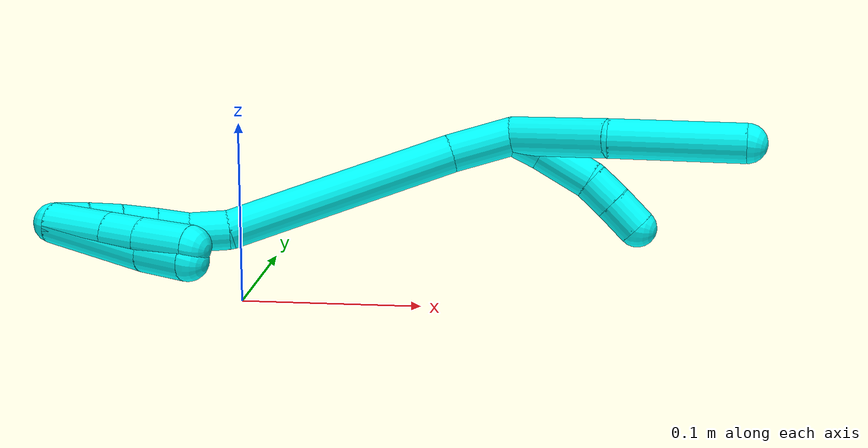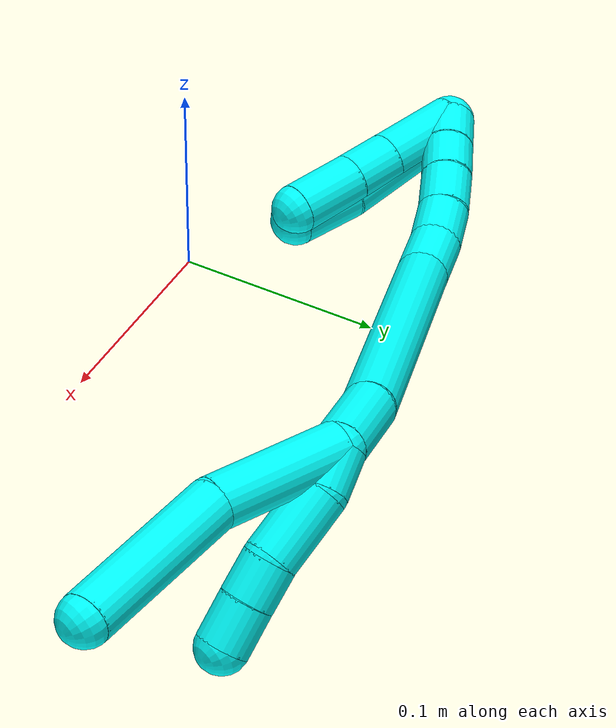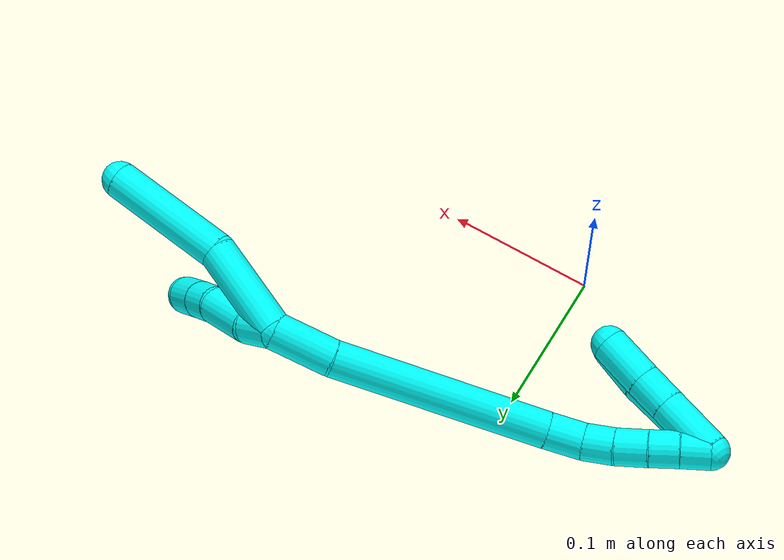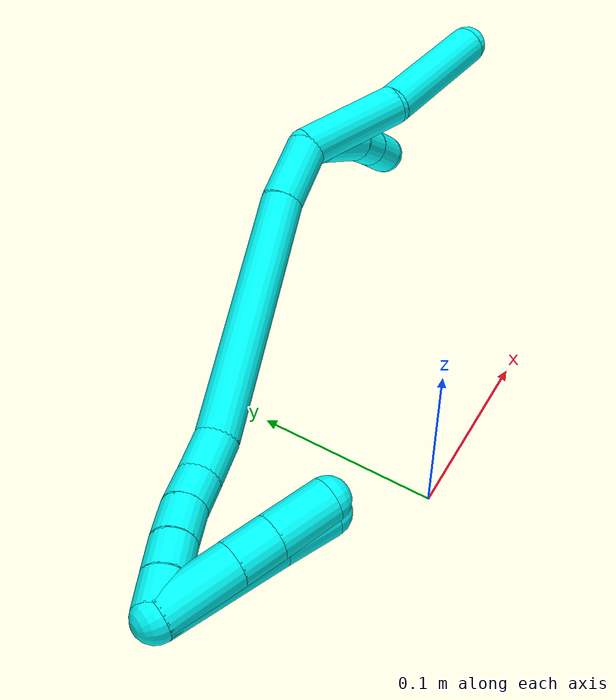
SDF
<sdf version="1.7">
 <world name="default">
  <model name="3">
   <static>0</static>
   <link name="3">
    <collision name="collision-cylinder-e_1_2_8">
     <pose>0.006742 -0.002748 -0.032233 3.05655 0.205469 2.35877</pose>
     <geometry><cylinder><radius>0.0125</radius><length>0.066091</length></cylinder></geometry>
     <surface>
      <friction><ode><mu>1.16</mu><mu2>1.16</mu2><slip1>0</slip1><slip2>0</slip2></ode></friction>
      <contact><ode><kp>1e+06</kp><kd>1</kd><max_vel>0</max_vel><min_depth>0.001</min_depth></ode></contact>
     </surface>
    </collision>
    <visual name="visual-cylinder-e_1_2_8">
     <pose>0.006742 -0.002748 -0.032233 3.05655 0.205469 2.35877</pose>
     <geometry><cylinder><radius>0.0125</radius><length>0.066091</length></cylinder></geometry>
     <material><ambient>0.003922 1 0.996078 1</ambient></material>
    </visual>
    <collision name="collision-cylinder-e_2_8_6">
     <pose>0.020006 0.003236 -0.104981 -2.92931 0.156071 -1.26628</pose>
     <geometry><cylinder><radius>0.0125</radius><length>0.083909</length></cylinder></geometry>
     <surface>
      <friction><ode><mu>1.16</mu><mu2>1.16</mu2><slip1>0</slip1><slip2>0</slip2></ode></friction>
      <contact><ode><kp>1e+06</kp><kd>1</kd><max_vel>0</max_vel><min_depth>0.001</min_depth></ode></contact>
     </surface>
    </collision>
    <visual name="visual-cylinder-e_2_8_6">
     <pose>0.020006 0.003236 -0.104981 -2.92931 0.156071 -1.26628</pose>
     <geometry><cylinder><radius>0.0125</radius><length>0.083909</length></cylinder></geometry>
     <material><ambient>0.003922 1 0.996078 1</ambient></material>
    </visual>
    <collision name="collision-cylinder-e_1_2_9">
     <pose>-0.003483 0.004195 -0.00927 -2.71667 -0.329847 1.31429</pose>
     <geometry><cylinder><radius>0.0125</radius><length>0.021509</length></cylinder></geometry>
     <surface>
      <friction><ode><mu>1.16</mu><mu2>1.16</mu2><slip1>0</slip1><slip2>0</slip2></ode></friction>
      <contact><ode><kp>1e+06</kp><kd>1</kd><max_vel>0</max_vel><min_depth>0.001</min_depth></ode></contact>
     </surface>
    </collision>
    <visual name="visual-cylinder-e_1_2_9">
     <pose>-0.003483 0.004195 -0.00927 -2.71667 -0.329847 1.31429</pose>
     <geometry><cylinder><radius>0.0125</radius><length>0.021509</length></cylinder></geometry>
     <material><ambient>0.003922 1 0.996078 1</ambient></material>
    </visual>
    <collision name="collision-cylinder-e_2_9_10">
     <pose>-0.013017 0.010567 -0.035402 -3.01313 -0.341895 2.42828</pose>
     <geometry><cylinder><radius>0.0125</radius><length>0.036094</length></cylinder></geometry>
     <surface>
      <friction><ode><mu>1.16</mu><mu2>1.16</mu2><slip1>0</slip1><slip2>0</slip2></ode></friction>
      <contact><ode><kp>1e+06</kp><kd>1</kd><max_vel>0</max_vel><min_depth>0.001</min_depth></ode></contact>
     </surface>
    </collision>
    <visual name="visual-cylinder-e_2_9_10">
     <pose>-0.013017 0.010567 -0.035402 -3.01313 -0.341895 2.42828</pose>
     <geometry><cylinder><radius>0.0125</radius><length>0.036094</length></cylinder></geometry>
     <material><ambient>0.003922 1 0.996078 1</ambient></material>
    </visual>
    <collision name="collision-cylinder-e_3_10_11">
     <pose>-0.024588 0.01406 -0.060606 -2.98531 -0.57897 2.62745</pose>
     <geometry><cylinder><radius>0.0125</radius><length>0.020177</length></cylinder></geometry>
     <surface>
      <friction><ode><mu>1.16</mu><mu2>1.16</mu2><slip1>0</slip1><slip2>0</slip2></ode></friction>
      <contact><ode><kp>1e+06</kp><kd>1</kd><max_vel>0</max_vel><min_depth>0.001</min_depth></ode></contact>
     </surface>
    </collision>
    <visual name="visual-cylinder-e_3_10_11">
     <pose>-0.024588 0.01406 -0.060606 -2.98531 -0.57897 2.62745</pose>
     <geometry><cylinder><radius>0.0125</radius><length>0.020177</length></cylinder></geometry>
     <material><ambient>0.003922 1 0.996078 1</ambient></material>
    </visual>
    <collision name="collision-cylinder-e_4_11_5">
     <pose>-0.036594 0.016754 -0.077861 -2.98798 -0.62343 2.6727</pose>
     <geometry><cylinder><radius>0.0125</radius><length>0.02222</length></cylinder></geometry>
     <surface>
      <friction><ode><mu>1.16</mu><mu2>1.16</mu2><slip1>0</slip1><slip2>0</slip2></ode></friction>
      <contact><ode><kp>1e+06</kp><kd>1</kd><max_vel>0</max_vel><min_depth>0.001</min_depth></ode></contact>
     </surface>
    </collision>
    <visual name="visual-cylinder-e_4_11_5">
     <pose>-0.036594 0.016754 -0.077861 -2.98798 -0.62343 2.6727</pose>
     <geometry><cylinder><radius>0.0125</radius><length>0.02222</length></cylinder></geometry>
     <material><ambient>0.003922 1 0.996078 1</ambient></material>
    </visual>
    <collision name="collision-cylinder-e_1_2_12">
     <pose>-0.008437 -0.009582 0.016531 0.525285 -0.415804 -0.113308</pose>
     <geometry><cylinder><radius>0.0125</radius><length>0.041775</length></cylinder></geometry>
     <surface>
      <friction><ode><mu>1.16</mu><mu2>1.16</mu2><slip1>0</slip1><slip2>0</slip2></ode></friction>
      <contact><ode><kp>1e+06</kp><kd>1</kd><max_vel>0</max_vel><min_depth>0.001</min_depth></ode></contact>
     </surface>
    </collision>
    <visual name="visual-cylinder-e_1_2_12">
     <pose>-0.008437 -0.009582 0.016531 0.525285 -0.415804 -0.113308</pose>
     <geometry><cylinder><radius>0.0125</radius><length>0.041775</length></cylinder></geometry>
     <material><ambient>0.003922 1 0.996078 1</ambient></material>
    </visual>
    <collision name="collision-cylinder-e_2_12_13">
     <pose>-0.048297 -0.061959 0.085663 0.682976 -0.433942 -0.156375</pose>
     <geometry><cylinder><radius>0.0125</radius><length>0.149475</length></cylinder></geometry>
     <surface>
      <friction><ode><mu>1.16</mu><mu2>1.16</mu2><slip1>0</slip1><slip2>0</slip2></ode></friction>
      <contact><ode><kp>1e+06</kp><kd>1</kd><max_vel>0</max_vel><min_depth>0.001</min_depth></ode></contact>
     </surface>
    </collision>
    <visual name="visual-cylinder-e_2_12_13">
     <pose>-0.048297 -0.061959 0.085663 0.682976 -0.433942 -0.156375</pose>
     <geometry><cylinder><radius>0.0125</radius><length>0.149475</length></cylinder></geometry>
     <material><ambient>0.003922 1 0.996078 1</ambient></material>
    </visual>
    <collision name="collision-cylinder-e_3_13_14">
     <pose>-0.082062 -0.111745 0.148829 0.584511 -0.182757 -0.055126</pose>
     <geometry><cylinder><radius>0.0125</radius><length>0.025767</length></cylinder></geometry>
     <surface>
      <friction><ode><mu>1.16</mu><mu2>1.16</mu2><slip1>0</slip1><slip2>0</slip2></ode></friction>
      <contact><ode><kp>1e+06</kp><kd>1</kd><max_vel>0</max_vel><min_depth>0.001</min_depth></ode></contact>
     </surface>
    </collision>
    <visual name="visual-cylinder-e_3_13_14">
     <pose>-0.082062 -0.111745 0.148829 0.584511 -0.182757 -0.055126</pose>
     <geometry><cylinder><radius>0.0125</radius><length>0.025767</length></cylinder></geometry>
     <material><ambient>0.003922 1 0.996078 1</ambient></material>
    </visual>
    <collision name="collision-cylinder-e_4_14_15">
     <pose>-0.083895 -0.124921 0.167843 0.631989 0.048511 0.015864</pose>
     <geometry><cylinder><radius>0.0125</radius><length>0.020965</length></cylinder></geometry>
     <surface>
      <friction><ode><mu>1.16</mu><mu2>1.16</mu2><slip1>0</slip1><slip2>0</slip2></ode></friction>
      <contact><ode><kp>1e+06</kp><kd>1</kd><max_vel>0</max_vel><min_depth>0.001</min_depth></ode></contact>
     </surface>
    </collision>
    <visual name="visual-cylinder-e_4_14_15">
     <pose>-0.083895 -0.124921 0.167843 0.631989 0.048511 0.015864</pose>
     <geometry><cylinder><radius>0.0125</radius><length>0.020965</length></cylinder></geometry>
     <material><ambient>0.003922 1 0.996078 1</ambient></material>
    </visual>
    <collision name="collision-cylinder-e_5_15_16">
     <pose>-0.082875 -0.138548 0.184311 0.747987 0.046784 0.018364</pose>
     <geometry><cylinder><radius>0.0125</radius><length>0.021906</length></cylinder></geometry>
     <surface>
      <friction><ode><mu>1.16</mu><mu2>1.16</mu2><slip1>0</slip1><slip2>0</slip2></ode></friction>
      <contact><ode><kp>1e+06</kp><kd>1</kd><max_vel>0</max_vel><min_depth>0.001</min_depth></ode></contact>
     </surface>
    </collision>
    <visual name="visual-cylinder-e_5_15_16">
     <pose>-0.082875 -0.138548 0.184311 0.747987 0.046784 0.018364</pose>
     <geometry><cylinder><radius>0.0125</radius><length>0.021906</length></cylinder></geometry>
     <material><ambient>0.003922 1 0.996078 1</ambient></material>
    </visual>
    <collision name="collision-cylinder-e_6_16_17">
     <pose>-0.082405 -0.153169 0.199336 0.797781 -0.004271 -0.0018</pose>
     <geometry><cylinder><radius>0.0125</radius><length>0.02006</length></cylinder></geometry>
     <surface>
      <friction><ode><mu>1.16</mu><mu2>1.16</mu2><slip1>0</slip1><slip2>0</slip2></ode></friction>
      <contact><ode><kp>1e+06</kp><kd>1</kd><max_vel>0</max_vel><min_depth>0.001</min_depth></ode></contact>
     </surface>
    </collision>
    <visual name="visual-cylinder-e_6_16_17">
     <pose>-0.082405 -0.153169 0.199336 0.797781 -0.004271 -0.0018</pose>
     <geometry><cylinder><radius>0.0125</radius><length>0.02006</length></cylinder></geometry>
     <material><ambient>0.003922 1 0.996078 1</ambient></material>
    </visual>
    <collision name="collision-cylinder-e_7_17_1">
     <pose>-0.08305 -0.167499 0.213341 0.795896 -0.060027 -0.02524</pose>
     <geometry><cylinder><radius>0.0125</radius><length>0.020053</length></cylinder></geometry>
     <surface>
      <friction><ode><mu>1.16</mu><mu2>1.16</mu2><slip1>0</slip1><slip2>0</slip2></ode></friction>
      <contact><ode><kp>1e+06</kp><kd>1</kd><max_vel>0</max_vel><min_depth>0.001</min_depth></ode></contact>
     </surface>
    </collision>
    <visual name="visual-cylinder-e_7_17_1">
     <pose>-0.08305 -0.167499 0.213341 0.795896 -0.060027 -0.02524</pose>
     <geometry><cylinder><radius>0.0125</radius><length>0.020053</length></cylinder></geometry>
     <material><ambient>0.003922 1 0.996078 1</ambient></material>
    </visual>
    <collision name="collision-cylinder-e_1_1_18">
     <pose>-0.081455 -0.174597 0.199422 -3.13904 0.104562 -3.09281</pose>
     <geometry><cylinder><radius>0.0125</radius><length>0.042073</length></cylinder></geometry>
     <surface>
      <friction><ode><mu>1.16</mu><mu2>1.16</mu2><slip1>0</slip1><slip2>0</slip2></ode></friction>
      <contact><ode><kp>1e+06</kp><kd>1</kd><max_vel>0</max_vel><min_depth>0.001</min_depth></ode></contact>
     </surface>
    </collision>
    <visual name="visual-cylinder-e_1_1_18">
     <pose>-0.081455 -0.174597 0.199422 -3.13904 0.104562 -3.09281</pose>
     <geometry><cylinder><radius>0.0125</radius><length>0.042073</length></cylinder></geometry>
     <material><ambient>0.003922 1 0.996078 1</ambient></material>
    </visual>
    <collision name="collision-cylinder-e_2_18_19">
     <pose>-0.078008 -0.174541 0.166762 -3.14142 0.106256 -3.13832</pose>
     <geometry><cylinder><radius>0.0125</radius><length>0.023611</length></cylinder></geometry>
     <surface>
      <friction><ode><mu>1.16</mu><mu2>1.16</mu2><slip1>0</slip1><slip2>0</slip2></ode></friction>
      <contact><ode><kp>1e+06</kp><kd>1</kd><max_vel>0</max_vel><min_depth>0.001</min_depth></ode></contact>
     </surface>
    </collision>
    <visual name="visual-cylinder-e_2_18_19">
     <pose>-0.078008 -0.174541 0.166762 -3.14142 0.106256 -3.13832</pose>
     <geometry><cylinder><radius>0.0125</radius><length>0.023611</length></cylinder></geometry>
     <material><ambient>0.003922 1 0.996078 1</ambient></material>
    </visual>
    <collision name="collision-cylinder-e_3_19_4">
     <pose>-0.074706 -0.17477 0.137989 3.12801 0.119721 2.91593</pose>
     <geometry><cylinder><radius>0.0125</radius><length>0.034316</length></cylinder></geometry>
     <surface>
      <friction><ode><mu>1.16</mu><mu2>1.16</mu2><slip1>0</slip1><slip2>0</slip2></ode></friction>
      <contact><ode><kp>1e+06</kp><kd>1</kd><max_vel>0</max_vel><min_depth>0.001</min_depth></ode></contact>
     </surface>
    </collision>
    <visual name="visual-cylinder-e_3_19_4">
     <pose>-0.074706 -0.17477 0.137989 3.12801 0.119721 2.91593</pose>
     <geometry><cylinder><radius>0.0125</radius><length>0.034316</length></cylinder></geometry>
     <material><ambient>0.003922 1 0.996078 1</ambient></material>
    </visual>
    <collision name="collision-cylinder-e_1_1_20">
     <pose>-0.083944 -0.174364 0.186112 -3.13323 -0.008549 1.59242</pose>
     <geometry><cylinder><radius>0.0125</radius><length>0.068469</length></cylinder></geometry>
     <surface>
      <friction><ode><mu>1.16</mu><mu2>1.16</mu2><slip1>0</slip1><slip2>0</slip2></ode></friction>
      <contact><ode><kp>1e+06</kp><kd>1</kd><max_vel>0</max_vel><min_depth>0.001</min_depth></ode></contact>
     </surface>
    </collision>
    <visual name="visual-cylinder-e_1_1_20">
     <pose>-0.083944 -0.174364 0.186112 -3.13323 -0.008549 1.59242</pose>
     <geometry><cylinder><radius>0.0125</radius><length>0.068469</length></cylinder></geometry>
     <material><ambient>0.003922 1 0.996078 1</ambient></material>
    </visual>
    <collision name="collision-cylinder-e_2_20_3">
     <pose>-0.08266 -0.175252 0.136237 3.06663 0.100148 1.85686</pose>
     <geometry><cylinder><radius>0.0125</radius><length>0.031531</length></cylinder></geometry>
     <surface>
      <friction><ode><mu>1.16</mu><mu2>1.16</mu2><slip1>0</slip1><slip2>0</slip2></ode></friction>
      <contact><ode><kp>1e+06</kp><kd>1</kd><max_vel>0</max_vel><min_depth>0.001</min_depth></ode></contact>
     </surface>
    </collision>
    <visual name="visual-cylinder-e_2_20_3">
     <pose>-0.08266 -0.175252 0.136237 3.06663 0.100148 1.85686</pose>
     <geometry><cylinder><radius>0.0125</radius><length>0.031531</length></cylinder></geometry>
     <material><ambient>0.003922 1 0.996078 1</ambient></material>
    </visual>
    <collision name="collision-sphere-3">
     <pose>-0.081084 -0.176427 0.120595 0 -0 0</pose>
     <geometry><sphere><radius>0.0125</radius></sphere></geometry>
     <surface>
      <friction><ode><mu>1.16</mu><mu2>1.16</mu2><slip1>0</slip1><slip2>0</slip2></ode></friction>
      <contact><ode><kp>1e+06</kp><kd>1</kd><max_vel>0</max_vel><min_depth>0.001</min_depth></ode></contact>
     </surface>
    </collision>
    <visual name="visual-sphere-3">
     <pose>-0.081084 -0.176427 0.120595 0 -0 0</pose>
     <geometry><sphere><radius>0.0125</radius></sphere></geometry>
     <material><ambient>0.003922 1 0.996078 1</ambient></material>
    </visual>
    <collision name="collision-sphere-20">
     <pose>-0.084236 -0.174077 0.15188 0 -0 0</pose>
     <geometry><sphere><radius>0.0125</radius></sphere></geometry>
     <surface>
      <friction><ode><mu>1.16</mu><mu2>1.16</mu2><slip1>0</slip1><slip2>0</slip2></ode></friction>
      <contact><ode><kp>1e+06</kp><kd>1</kd><max_vel>0</max_vel><min_depth>0.001</min_depth></ode></contact>
     </surface>
    </collision>
    <visual name="visual-sphere-20">
     <pose>-0.084236 -0.174077 0.15188 0 -0 0</pose>
     <geometry><sphere><radius>0.0125</radius></sphere></geometry>
     <material><ambient>0.003922 1 0.996078 1</ambient></material>
    </visual>
    <collision name="collision-sphere-4">
     <pose>-0.072657 -0.175002 0.120956 0 -0 0</pose>
     <geometry><sphere><radius>0.0125</radius></sphere></geometry>
     <surface>
      <friction><ode><mu>1.16</mu><mu2>1.16</mu2><slip1>0</slip1><slip2>0</slip2></ode></friction>
      <contact><ode><kp>1e+06</kp><kd>1</kd><max_vel>0</max_vel><min_depth>0.001</min_depth></ode></contact>
     </surface>
    </collision>
    <visual name="visual-sphere-4">
     <pose>-0.072657 -0.175002 0.120956 0 -0 0</pose>
     <geometry><sphere><radius>0.0125</radius></sphere></geometry>
     <material><ambient>0.003922 1 0.996078 1</ambient></material>
    </visual>
    <collision name="collision-sphere-11">
     <pose>-0.030108 0.015374 -0.068948 0 -0 0</pose>
     <geometry><sphere><radius>0.0125</radius></sphere></geometry>
     <surface>
      <friction><ode><mu>1.16</mu><mu2>1.16</mu2><slip1>0</slip1><slip2>0</slip2></ode></friction>
      <contact><ode><kp>1e+06</kp><kd>1</kd><max_vel>0</max_vel><min_depth>0.001</min_depth></ode></contact>
     </surface>
    </collision>
    <visual name="visual-sphere-11">
     <pose>-0.030108 0.015374 -0.068948 0 -0 0</pose>
     <geometry><sphere><radius>0.0125</radius></sphere></geometry>
     <material><ambient>0.003922 1 0.996078 1</ambient></material>
    </visual>
    <collision name="collision-sphere-10">
     <pose>-0.019068 0.012746 -0.052265 0 -0 0</pose>
     <geometry><sphere><radius>0.0125</radius></sphere></geometry>
     <surface>
      <friction><ode><mu>1.16</mu><mu2>1.16</mu2><slip1>0</slip1><slip2>0</slip2></ode></friction>
      <contact><ode><kp>1e+06</kp><kd>1</kd><max_vel>0</max_vel><min_depth>0.001</min_depth></ode></contact>
     </surface>
    </collision>
    <visual name="visual-sphere-10">
     <pose>-0.019068 0.012746 -0.052265 0 -0 0</pose>
     <geometry><sphere><radius>0.0125</radius></sphere></geometry>
     <material><ambient>0.003922 1 0.996078 1</ambient></material>
    </visual>
    <collision name="collision-sphere-6">
     <pose>0.026527 0.011968 -0.145495 0 -0 0</pose>
     <geometry><sphere><radius>0.0125</radius></sphere></geometry>
     <surface>
      <friction><ode><mu>1.16</mu><mu2>1.16</mu2><slip1>0</slip1><slip2>0</slip2></ode></friction>
      <contact><ode><kp>1e+06</kp><kd>1</kd><max_vel>0</max_vel><min_depth>0.001</min_depth></ode></contact>
     </surface>
    </collision>
    <visual name="visual-sphere-6">
     <pose>0.026527 0.011968 -0.145495 0 -0 0</pose>
     <geometry><sphere><radius>0.0125</radius></sphere></geometry>
     <material><ambient>0.003922 1 0.996078 1</ambient></material>
    </visual>
    <collision name="collision-sphere-9">
     <pose>-0.006967 0.008389 -0.01854 0 -0 0</pose>
     <geometry><sphere><radius>0.0125</radius></sphere></geometry>
     <surface>
      <friction><ode><mu>1.16</mu><mu2>1.16</mu2><slip1>0</slip1><slip2>0</slip2></ode></friction>
      <contact><ode><kp>1e+06</kp><kd>1</kd><max_vel>0</max_vel><min_depth>0.001</min_depth></ode></contact>
     </surface>
    </collision>
    <visual name="visual-sphere-9">
     <pose>-0.006967 0.008389 -0.01854 0 -0 0</pose>
     <geometry><sphere><radius>0.0125</radius></sphere></geometry>
     <material><ambient>0.003922 1 0.996078 1</ambient></material>
    </visual>
    <collision name="collision-sphere-2">
     <geometry><sphere><radius>0.0125</radius></sphere></geometry>
     <surface>
      <friction><ode><mu>1.16</mu><mu2>1.16</mu2><slip1>0</slip1><slip2>0</slip2></ode></friction>
      <contact><ode><kp>1e+06</kp><kd>1</kd><max_vel>0</max_vel><min_depth>0.001</min_depth></ode></contact>
     </surface>
    </collision>
    <visual name="visual-sphere-2">
     <geometry><sphere><radius>0.0125</radius></sphere></geometry>
     <material><ambient>0.003922 1 0.996078 1</ambient></material>
    </visual>
    <collision name="collision-sphere-19">
     <pose>-0.076756 -0.174539 0.155023 0 -0 0</pose>
     <geometry><sphere><radius>0.0125</radius></sphere></geometry>
     <surface>
      <friction><ode><mu>1.16</mu><mu2>1.16</mu2><slip1>0</slip1><slip2>0</slip2></ode></friction>
      <contact><ode><kp>1e+06</kp><kd>1</kd><max_vel>0</max_vel><min_depth>0.001</min_depth></ode></contact>
     </surface>
    </collision>
    <visual name="visual-sphere-19">
     <pose>-0.076756 -0.174539 0.155023 0 -0 0</pose>
     <geometry><sphere><radius>0.0125</radius></sphere></geometry>
     <material><ambient>0.003922 1 0.996078 1</ambient></material>
    </visual>
    <collision name="collision-sphere-8">
     <pose>0.013484 -0.005496 -0.064467 0 -0 0</pose>
     <geometry><sphere><radius>0.0125</radius></sphere></geometry>
     <surface>
      <friction><ode><mu>1.16</mu><mu2>1.16</mu2><slip1>0</slip1><slip2>0</slip2></ode></friction>
      <contact><ode><kp>1e+06</kp><kd>1</kd><max_vel>0</max_vel><min_depth>0.001</min_depth></ode></contact>
     </surface>
    </collision>
    <visual name="visual-sphere-8">
     <pose>0.013484 -0.005496 -0.064467 0 -0 0</pose>
     <geometry><sphere><radius>0.0125</radius></sphere></geometry>
     <material><ambient>0.003922 1 0.996078 1</ambient></material>
    </visual>
    <collision name="collision-sphere-5">
     <pose>-0.043081 0.018135 -0.086775 0 -0 0</pose>
     <geometry><sphere><radius>0.0125</radius></sphere></geometry>
     <surface>
      <friction><ode><mu>1.16</mu><mu2>1.16</mu2><slip1>0</slip1><slip2>0</slip2></ode></friction>
      <contact><ode><kp>1e+06</kp><kd>1</kd><max_vel>0</max_vel><min_depth>0.001</min_depth></ode></contact>
     </surface>
    </collision>
    <visual name="visual-sphere-5">
     <pose>-0.043081 0.018135 -0.086775 0 -0 0</pose>
     <geometry><sphere><radius>0.0125</radius></sphere></geometry>
     <material><ambient>0.003922 1 0.996078 1</ambient></material>
    </visual>
    <collision name="collision-sphere-12">
     <pose>-0.016874 -0.019163 0.033063 0 -0 0</pose>
     <geometry><sphere><radius>0.0125</radius></sphere></geometry>
     <surface>
      <friction><ode><mu>1.16</mu><mu2>1.16</mu2><slip1>0</slip1><slip2>0</slip2></ode></friction>
      <contact><ode><kp>1e+06</kp><kd>1</kd><max_vel>0</max_vel><min_depth>0.001</min_depth></ode></contact>
     </surface>
    </collision>
    <visual name="visual-sphere-12">
     <pose>-0.016874 -0.019163 0.033063 0 -0 0</pose>
     <geometry><sphere><radius>0.0125</radius></sphere></geometry>
     <material><ambient>0.003922 1 0.996078 1</ambient></material>
    </visual>
    <collision name="collision-sphere-13">
     <pose>-0.079721 -0.104754 0.138264 0 -0 0</pose>
     <geometry><sphere><radius>0.0125</radius></sphere></geometry>
     <surface>
      <friction><ode><mu>1.16</mu><mu2>1.16</mu2><slip1>0</slip1><slip2>0</slip2></ode></friction>
      <contact><ode><kp>1e+06</kp><kd>1</kd><max_vel>0</max_vel><min_depth>0.001</min_depth></ode></contact>
     </surface>
    </collision>
    <visual name="visual-sphere-13">
     <pose>-0.079721 -0.104754 0.138264 0 -0 0</pose>
     <geometry><sphere><radius>0.0125</radius></sphere></geometry>
     <material><ambient>0.003922 1 0.996078 1</ambient></material>
    </visual>
    <collision name="collision-sphere-14">
     <pose>-0.084403 -0.118735 0.159395 0 -0 0</pose>
     <geometry><sphere><radius>0.0125</radius></sphere></geometry>
     <surface>
      <friction><ode><mu>1.16</mu><mu2>1.16</mu2><slip1>0</slip1><slip2>0</slip2></ode></friction>
      <contact><ode><kp>1e+06</kp><kd>1</kd><max_vel>0</max_vel><min_depth>0.001</min_depth></ode></contact>
     </surface>
    </collision>
    <visual name="visual-sphere-14">
     <pose>-0.084403 -0.118735 0.159395 0 -0 0</pose>
     <geometry><sphere><radius>0.0125</radius></sphere></geometry>
     <material><ambient>0.003922 1 0.996078 1</ambient></material>
    </visual>
    <collision name="collision-sphere-15">
     <pose>-0.083387 -0.131106 0.176291 0 -0 0</pose>
     <geometry><sphere><radius>0.0125</radius></sphere></geometry>
     <surface>
      <friction><ode><mu>1.16</mu><mu2>1.16</mu2><slip1>0</slip1><slip2>0</slip2></ode></friction>
      <contact><ode><kp>1e+06</kp><kd>1</kd><max_vel>0</max_vel><min_depth>0.001</min_depth></ode></contact>
     </surface>
    </collision>
    <visual name="visual-sphere-15">
     <pose>-0.083387 -0.131106 0.176291 0 -0 0</pose>
     <geometry><sphere><radius>0.0125</radius></sphere></geometry>
     <material><ambient>0.003922 1 0.996078 1</ambient></material>
    </visual>
    <collision name="collision-sphere-16">
     <pose>-0.082362 -0.14599 0.192332 0 -0 0</pose>
     <geometry><sphere><radius>0.0125</radius></sphere></geometry>
     <surface>
      <friction><ode><mu>1.16</mu><mu2>1.16</mu2><slip1>0</slip1><slip2>0</slip2></ode></friction>
      <contact><ode><kp>1e+06</kp><kd>1</kd><max_vel>0</max_vel><min_depth>0.001</min_depth></ode></contact>
     </surface>
    </collision>
    <visual name="visual-sphere-16">
     <pose>-0.082362 -0.14599 0.192332 0 -0 0</pose>
     <geometry><sphere><radius>0.0125</radius></sphere></geometry>
     <material><ambient>0.003922 1 0.996078 1</ambient></material>
    </visual>
    <collision name="collision-sphere-17">
     <pose>-0.082448 -0.160348 0.206339 0 -0 0</pose>
     <geometry><sphere><radius>0.0125</radius></sphere></geometry>
     <surface>
      <friction><ode><mu>1.16</mu><mu2>1.16</mu2><slip1>0</slip1><slip2>0</slip2></ode></friction>
      <contact><ode><kp>1e+06</kp><kd>1</kd><max_vel>0</max_vel><min_depth>0.001</min_depth></ode></contact>
     </surface>
    </collision>
    <visual name="visual-sphere-17">
     <pose>-0.082448 -0.160348 0.206339 0 -0 0</pose>
     <geometry><sphere><radius>0.0125</radius></sphere></geometry>
     <material><ambient>0.003922 1 0.996078 1</ambient></material>
    </visual>
    <collision name="collision-sphere-1">
     <pose>-0.083651 -0.17465 0.220344 0 -0 0</pose>
     <geometry><sphere><radius>0.0125</radius></sphere></geometry>
     <surface>
      <friction><ode><mu>1.16</mu><mu2>1.16</mu2><slip1>0</slip1><slip2>0</slip2></ode></friction>
      <contact><ode><kp>1e+06</kp><kd>1</kd><max_vel>0</max_vel><min_depth>0.001</min_depth></ode></contact>
     </surface>
    </collision>
    <visual name="visual-sphere-1">
     <pose>-0.083651 -0.17465 0.220344 0 -0 0</pose>
     <geometry><sphere><radius>0.0125</radius></sphere></geometry>
     <material><ambient>0.003922 1 0.996078 1</ambient></material>
    </visual>
    <collision name="collision-sphere-18">
     <pose>-0.07926 -0.174543 0.178501 0 -0 0</pose>
     <geometry><sphere><radius>0.0125</radius></sphere></geometry>
     <surface>
      <friction><ode><mu>1.16</mu><mu2>1.16</mu2><slip1>0</slip1><slip2>0</slip2></ode></friction>
      <contact><ode><kp>1e+06</kp><kd>1</kd><max_vel>0</max_vel><min_depth>0.001</min_depth></ode></contact>
     </surface>
    </collision>
    <visual name="visual-sphere-18">
     <pose>-0.07926 -0.174543 0.178501 0 -0 0</pose>
     <geometry><sphere><radius>0.0125</radius></sphere></geometry>
     <material><ambient>0.003922 1 0.996078 1</ambient></material>
    </visual>
    <inertial>
     <pose>-0.043327 -0.077783 0.069194 0 -0 0</pose>
     <mass>0.75</mass>
     <inertia>
      <ixx>0.000206</ixx>
      <ixy>0</ixy>
      <ixz>0</ixz>
      <iyy>0.000228</iyy>
      <iyz>0</iyz>
      <izz>0.000257</izz>
     </inertia>
    </inertial>
   </link>
   <pose>0.143997 0.160527 0.068236 -0.270612 -1.42108 -0.079535</pose>
  </model>
 </world>
</sdf>
